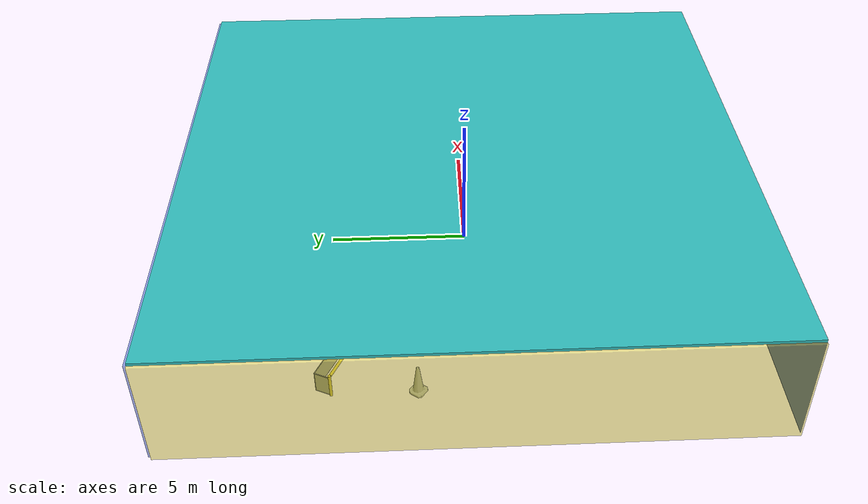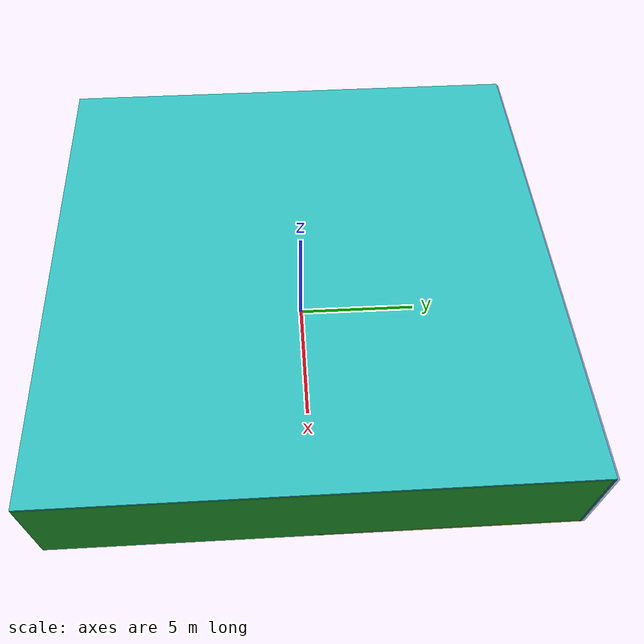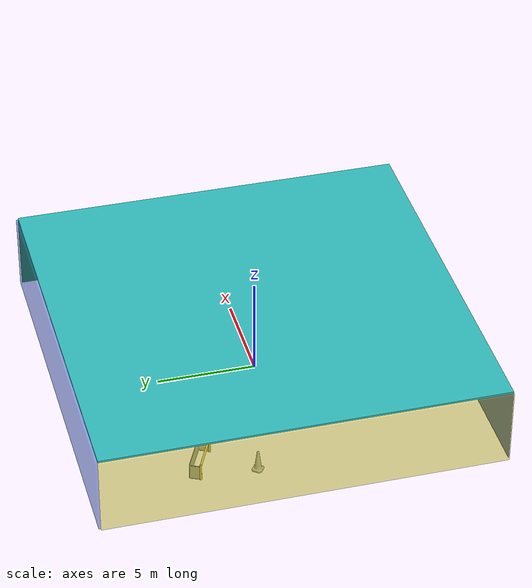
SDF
<sdf version="1.4">
 <world name="default">
  <physics type="ode">
   <max_step_size>0.001</max_step_size>
   <real_time_factor>1</real_time_factor>
   <real_time_update_rate>1000</real_time_update_rate>
   <gravity>0 0 -9.8</gravity>
  </physics>
  <scene><ambient>0.4 0.4 0.4 1</ambient><background>0.7 0.7 0.7 1</background><shadows>1</shadows></scene>
  <model name="Surrounding">
   <static>1</static>
   <link name="Ceiling">
    <collision name="Ceiling_Collision"><geometry><box><size>20 20 0.1</size></box></geometry></collision>
    <visual name="Ceiling_Visual">
     <geometry><box><size>20 20 0.1</size></box></geometry>
     <material>
      <script>
       <uri>file://media/materials/scripts/gazebo.material</uri>
       <name>Gazebo/TurquoiseGlowOutline</name>
      </script>
     </material>
    </visual>
    <pose>0 0 4.05 0 0 0</pose>
   </link>
   <link name="Wall_South">
    <collision name="Wall_South_Collision">
     <geometry><box><size>20 0 4</size></box></geometry>
     <pose>0 0 2 0 -0 0</pose>
    </collision>
    <visual name="Wall_South_Visual">
     <pose>0 0 2 0 -0 0</pose>
     <geometry><box><size>20 0 4</size></box></geometry>
     <material>
      <script><uri>file://media/materials/scripts/gazebo.material</uri><name>Gazebo/BlueGlow</name></script>
     </material>
    </visual>
    <velocity_decay><linear>0</linear><angular>0</angular></velocity_decay>
    <pose>0 -10 0 0 -0 0</pose>
   </link>
   <link name="Wall_East">
    <collision name="Wall_21_Collision">
     <geometry><box><size>20 0 4</size></box></geometry>
     <pose>0 0 2 0 -0 0</pose>
    </collision>
    <visual name="Wall_21_Visual">
     <pose>0 0 2 0 -0 0</pose>
     <geometry><box><size>20 0 4</size></box></geometry>
     <material>
      <script><uri>file://media/materials/scripts/gazebo.material</uri><name>Gazebo/GreenGlow</name></script>
     </material>
    </visual>
    <velocity_decay><linear>0</linear><angular>0</angular></velocity_decay>
    <pose>10 0 0 0 -0 1.5708</pose>
   </link>
   <link name="Wall_North">
    <collision name="Wall_22_Collision">
     <geometry><box><size>20 0.2 4</size></box></geometry>
     <pose>0 0 2 0 -0 0</pose>
    </collision>
    <visual name="Wall_22_Visual">
     <pose>0 0 2 0 -0 0</pose>
     <geometry><box><size>20 0.2 4</size></box></geometry>
     <material>
      <script><uri>file://media/materials/scripts/gazebo.material</uri><name>Gazebo/BlueTransparent</name></script>
     </material>
    </visual>
    <velocity_decay><linear>0</linear><angular>0</angular></velocity_decay>
    <pose>0 10 0 0 -0 0</pose>
   </link>
   <link name="Wall_West">
    <collision name="Wall_23_Collision">
     <geometry><box><size>20 0.2 4</size></box></geometry>
     <pose>0 0 2 0 -0 0</pose>
    </collision>
    <visual name="Wall_23_Visual">
     <pose>0 0 2 0 -0 0</pose>
     <geometry><box><size>20 0.2 4</size></box></geometry>
     <material>
      <script>
       <uri>file://media/materials/scripts/gazebo.material</uri>
       <name>Gazebo/YellowTransparent</name>
      </script>
     </material>
    </visual>
    <velocity_decay><linear>0</linear><angular>0</angular></velocity_decay>
    <pose>-10 0 0 0 0 -1.5708</pose>
   </link>
   <link name="Ground_link">
    <collision name="collision">
     <pose>0 0 .05 0 -0 0</pose>
     <geometry><box><size>20 20 0.1</size></box></geometry>
    </collision>
    <visual name="visual">
     <pose>0 0 .05 0 -0 0</pose>
     <geometry><box><size>20 20 0.1</size></box></geometry>
     <material>
      <script>
       <uri>file://media/materials/scripts/gazebo.material</uri>
       <name>Gazebo/YellowTransparent</name>
      </script>
     </material>
    </visual>
   </link>
   <static>1</static>
  </model>
  <spherical_coordinates>
   <surface_model>EARTH_WGS84</surface_model>
   <latitude_deg>0</latitude_deg>
   <longitude_deg>0</longitude_deg>
   <elevation>0</elevation>
   <heading_deg>0</heading_deg>
  </spherical_coordinates>
  <light name="lightball_0" type="diffuse">
   <diffuse>0.8 0.8 0.8 1</diffuse>
   <specular>0.2 0.2 0.2 1</specular>
   <attenuation>
    <range>100</range>
    <constant>0.7</constant>
    <linear>0.01</linear>
    <quadratic>0.001</quadratic>
   </attenuation>
   <direction>-0.5 0.1 -0.9</direction>
   <pose>-7.76096499551 0.110691502334 3.0010885159 0 0 0</pose>
  </light>
  <light name="lightball_1" type="diffuse">
   <diffuse>0.8 0.8 0.8 1</diffuse>
   <specular>0.2 0.2 0.2 1</specular>
   <attenuation>
    <range>100</range>
    <constant>0.7</constant>
    <linear>0.01</linear>
    <quadratic>0.001</quadratic>
   </attenuation>
   <direction>-0.5 0.1 -0.9</direction>
   <pose>-9.79039637267 -4.05579660776 3.69515992 0 0 0</pose>
  </light>
  <light name="lightball_2" type="diffuse">
   <diffuse>0.8 0.8 0.8 1</diffuse>
   <specular>0.2 0.2 0.2 1</specular>
   <attenuation>
    <range>100</range>
    <constant>0.7</constant>
    <linear>0.01</linear>
    <quadratic>0.001</quadratic>
   </attenuation>
   <direction>-0.5 0.1 -0.9</direction>
   <pose>-8.45709359726 6.27472351842 0.769468424199 0 0 0</pose>
  </light>
  <light name="lightball_3" type="diffuse">
   <diffuse>0.8 0.8 0.8 1</diffuse>
   <specular>0.2 0.2 0.2 1</specular>
   <attenuation>
    <range>100</range>
    <constant>0.7</constant>
    <linear>0.01</linear>
    <quadratic>0.001</quadratic>
   </attenuation>
   <direction>-0.5 0.1 -0.9</direction>
   <pose>-2.43553623397 3.00779526259 0.640627569685 0 0 0</pose>
  </light>
  <include>
   <uri>model://construction_cone</uri>
   <pose>-7.72245575233 1.85418471543 0 0 0 0.930275539134</pose>
  </include>
  <include>
   <uri>model://robocup_3Dsim_goal</uri>
   <pose>-6.81884763012 4.21983330526 0 0 0 1.12704064437</pose>
  </include>
  <include><uri>model://table</uri><pose>-0.917255229463 -4.55659833016 0 0 0 1.15651106027</pose></include>
 </world>
</sdf>

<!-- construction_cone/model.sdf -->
<sdf version="1.5">
  <model name="Construction Cone">
    <link name="link">
      <collision name="collision">
        <geometry>
          <mesh>
            <scale>10 10 10</scale>
            <uri>file://isr-testbed/construction_cone/meshes/construction_cone.dae</uri>
          </mesh>
        </geometry>
      </collision>
      <visual name="visual">
        <geometry>
          <mesh>
            <scale>10 10 10</scale>
            <uri>file://isr-testbed/construction_cone/meshes/construction_cone.dae</uri>
          </mesh>
        </geometry>
      </visual>
    </link>
  </model>
</sdf>

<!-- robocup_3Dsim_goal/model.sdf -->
<sdf version="1.5">
  <model name="robocup_3d_goal">
    <static>true</static>
    <link name="left_post">
      <pose>0 1.05 0.45 0 0 0</pose>
      <collision name="collision">
        <geometry>
          <cylinder>
            <radius>0.05</radius>
            <length>0.9</length>
          </cylinder>
        </geometry>
      </collision>
      <visual name="visual">
        <geometry>
          <cylinder>
            <radius>0.05</radius>
            <length>0.9</length>
          </cylinder>
        </geometry>
        <material>
          <script>
            <uri>file://media/materials/scripts/gazebo.material</uri>
            <name>Gazebo/ZincYellow</name>
          </script>
        </material>
      </visual>
    </link>
    <link name="left_support_horiz_lower">
      <pose>0.30 1.05 0.01 0 0 0</pose>
      <collision name="collision">
        <geometry>
          <box>
            <size>0.50 0.02 0.02</size>
          </box>
        </geometry>
      </collision>
      <visual name="visual">
        <geometry>
          <box>
            <size>0.50 0.02 0.02</size>
          </box>
        </geometry>
        <material>
          <script>
            <uri>file://media/materials/scripts/gazebo.material</uri>
            <name>Gazebo/White</name>
          </script>
        </material>
      </visual>
    </link>
    <link name="left_support_horiz_upper">
      <pose>0.30 1.05 0.79 0 0 0</pose>
      <collision name="collision">
        <geometry>
          <box>
            <size>0.50 0.02 0.02</size>
          </box>
        </geometry>
      </collision>
      <visual name="visual">
        <geometry>
          <box>
            <size>0.50 0.02 0.02</size>
          </box>
        </geometry>
        <material>
          <script>
            <uri>file://media/materials/scripts/gazebo.material</uri>
            <name>Gazebo/White</name>
          </script>
        </material>
      </visual>
    </link>
    <link name="left_support_vertical">
      <pose>0.56 1.05 0.4 0 1.5708 0</pose>
      <collision name="collision">
        <geometry>
          <box>
            <size>0.80 0.02 0.02</size>
          </box>
        </geometry>
      </collision>
      <visual name="visual">
        <geometry>
          <box>
            <size>0.80 0.02 0.02</size>
          </box>
        </geometry>
        <material>
          <script>
            <uri>file://media/materials/scripts/gazebo.material</uri>
            <name>Gazebo/White</name>
          </script>
        </material>
      </visual>
    </link>
    <link name="right_support_horiz_lower">
      <pose>0.30 -1.05 0.01 0 0 0</pose>
      <collision name="collision">
        <geometry>
          <box>
            <size>0.50 0.02 0.02</size>
          </box>
        </geometry>
      </collision>
      <visual name="visual">
        <geometry>
          <box>
            <size>0.50 0.02 0.02</size>
          </box>
        </geometry>
        <material>
          <script>
            <uri>file://media/materials/scripts/gazebo.material</uri>
            <name>Gazebo/White</name>
          </script>
        </material>
      </visual>
    </link>
    <link name="right_support_horiz_upper">
      <pose>0.30 -1.05 0.79 0 0 0</pose>
      <collision name="collision">
        <geometry>
          <box>
            <size>0.50 0.02 0.02</size>
          </box>
        </geometry>
      </collision>
      <visual name="visual">
        <geometry>
          <box>
            <size>0.50 0.02 0.02</size>
          </box>
        </geometry>
        <material>
          <script>
            <uri>file://media/materials/scripts/gazebo.material</uri>
            <name>Gazebo/White</name>
          </script>
        </material>
      </visual>
    </link>
    <link name="right_support_vertical">
      <pose>0.56 -1.05 0.4 0 1.5708 0</pose>
      <collision name="collision">
        <geometry>
          <box>
            <size>0.80 0.02 0.02</size>
          </box>
        </geometry>
      </collision>
      <visual name="visual">
        <geometry>
          <box>
            <size>0.80 0.02 0.02</size>
          </box>
        </geometry>
        <material>
          <script>
            <uri>file://media/materials/scripts/gazebo.material</uri>
            <name>Gazebo/White</name>
          </script>
        </material>
      </visual>
    </link>
    <link name="center_support_horiz_lower">
      <pose>0.56 0 0.01 0 1.5708 0</pose>
      <collision name="collision">
        <geometry>
          <box>
            <size>0.02 2.08 0.02</size>
          </box>
        </geometry>
      </collision>
      <visual name="visual">
        <geometry>
          <box>
            <size>0.02 2.08 0.02</size>
          </box>
        </geometry>
        <material>
          <script>
            <uri>file://media/materials/scripts/gazebo.material</uri>
            <name>Gazebo/White</name>
          </script>
        </material>
      </visual>
    </link>
    <link name="center_support_horiz_upper">
      <pose>0.56 0 0.79 0 1.5708 0</pose>
      <collision name="collision">
        <geometry>
          <box>
            <size>0.02 2.08 0.02</size>
          </box>
        </geometry>
      </collision>
      <visual name="visual">
        <geometry>
          <box>
            <size>0.02 2.08 0.02</size>
          </box>
        </geometry>
        <material>
          <script>
            <uri>file://media/materials/scripts/gazebo.material</uri>
            <name>Gazebo/White</name>
          </script>
        </material>
      </visual>
    </link>
    <link name="right_post">
      <pose>0 -1.05 0.45 0 0 0</pose>
      <collision name="collision">
        <geometry>
          <cylinder>
            <radius>0.05</radius>
            <length>0.9</length>
          </cylinder>
        </geometry>
      </collision>
      <visual name="visual">
        <geometry>
          <cylinder>
            <radius>0.05</radius>
            <length>0.9</length>
          </cylinder>
        </geometry>
        <material>
          <script>
            <uri>file://media/materials/scripts/gazebo.material</uri>
            <name>Gazebo/ZincYellow</name>
          </script>
        </material>
      </visual>
    </link>
    <link name="crossbar">
      <pose>0 0 0.85 1.57 1.57 0</pose>
      <collision name="collision">
        <geometry>
          <cylinder>
            <radius>0.05</radius>
            <length>2.0</length>
          </cylinder>
        </geometry>
      </collision>
      <visual name="visual">
        <geometry>
          <cylinder>
            <radius>0.05</radius>
            <length>2.0</length>
          </cylinder>
        </geometry>
        <material>
          <script>
            <uri>file://media/materials/scripts/gazebo.material</uri>
            <name>Gazebo/ZincYellow</name>
          </script>
        </material>
      </visual>
    </link>
    <link name="center_net">
      <pose>0.56 0 0.40 0 0 0</pose>
      <collision name="collision">
        <geometry>
          <box>
            <size>0.01 2.1 0.80</size>
          </box>
        </geometry>
      </collision>
      <visual name="visual">
        <geometry>
          <box>
            <size>0.01 2.1 0.80</size>
          </box>
        </geometry>
        <material>
          <script>
            <uri>model://../model_source/models/robocup09_spl_field/materials/scripts/</uri>
            <uri>model://../model_source/models/robocup09_spl_field/materials/textures/</uri>
            <name>RoboCup/Net</name>
          </script>
        </material>
      </visual>
    </link>
    <link name="left_net">
      <pose>0.30 1.05 0.40 0 0 0</pose>
      <collision name="collision">
        <geometry>
          <box>
            <size>0.50 0.01 0.76</size>
          </box>
        </geometry>
      </collision>
      <visual name="visual">
        <geometry>
          <box>
            <size>0.50 0.01 0.76</size>
          </box>
        </geometry>
        <material>
          <script>
            <uri>model://../model_source/models/robocup09_spl_field/materials/scripts/</uri>
            <uri>model://../model_source/models/robocup09_spl_field/materials/textures/</uri>
            <name>RoboCup/Net</name>
          </script>
        </material>
      </visual>
    </link>
    <link name="right_net">
      <pose>0.30 -1.05 0.40 0 0 0</pose>
      <collision name="collision">
        <geometry>
          <box>
            <size>0.50 0.01 0.76</size>
          </box>
        </geometry>
      </collision>
      <visual name="visual">
        <geometry>
          <box>
            <size>0.50 0.01 0.76</size>
          </box>
        </geometry>
        <material>
          <script>
            <uri>model://../model_source/models/robocup09_spl_field/materials/scripts/</uri>
            <uri>model://../model_source/models/robocup09_spl_field/materials/textures/</uri>
            <name>RoboCup/Net</name>
          </script>
        </material>
      </visual>
    </link>
  </model>
</sdf>

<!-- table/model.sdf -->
<sdf version="1.5">
  <model name="table">
    <static>true</static>
    <link name="link">
      <collision name="surface">
        <pose>0 0 1.0 0 0 0</pose>
        <geometry>
          <box>
            <size>1.5 0.8 0.03</size>
          </box>
        </geometry>
        <surface>
          <friction>
            <ode>
              <mu>0.6</mu>
              <mu2>0.6</mu2>
            </ode>
          </friction>
        </surface>
      </collision>
      <visual name="visual1">
        <pose>0 0 1.0 0 0 0</pose>
        <geometry>
          <box>
            <size>1.5 0.8 0.03</size>
          </box>
        </geometry>
        <material>
          <script>
            <uri>model://media/materials/scripts/gazebo.material</uri>
            <name>Gazebo/Wood</name>
          </script>
        </material>
      </visual>
      <collision name="front_left_leg">
        <pose>0.68 0.38 0.5 0 0 0</pose>
        <geometry>
          <cylinder>
            <radius>0.02</radius>
            <length>1.0</length>
          </cylinder>
        </geometry>
      </collision>
      <visual name="front_left_leg">
        <pose>0.68 0.38 0.5 0 0 0</pose>
        <geometry>
          <cylinder>
            <radius>0.02</radius>
            <length>1.0</length>
          </cylinder>
        </geometry>
        <material>
          <script>
            <uri>model://media/materials/scripts/gazebo.material</uri>
            <name>Gazebo/Grey</name>
          </script>
        </material>
      </visual>
      <collision name="front_right_leg">
        <pose>0.68 -0.38 0.5 0 0 0</pose>
        <geometry>
          <cylinder>
            <radius>0.02</radius>
            <length>1.0</length>
          </cylinder>
        </geometry>
      </collision>
      <visual name="front_right_leg">
        <pose>0.68 -0.38 0.5 0 0 0</pose>
        <geometry>
          <cylinder>
            <radius>0.02</radius>
            <length>1.0</length>
          </cylinder>
        </geometry>
        <material>
          <script>
            <uri>model://media/materials/scripts/gazebo.material</uri>
            <name>Gazebo/Grey</name>
          </script>
        </material>
      </visual>
      <collision name="back_right_leg">
        <pose>-0.68 -0.38 0.5 0 0 0</pose>
        <geometry>
          <cylinder>
            <radius>0.02</radius>
            <length>1.0</length>
          </cylinder>
        </geometry>
      </collision>
      <visual name="back_right_leg">
        <pose>-0.68 -0.38 0.5 0 0 0</pose>
        <geometry>
          <cylinder>
            <radius>0.02</radius>
            <length>1.0</length>
          </cylinder>
        </geometry>
        <material>
          <script>
            <uri>model://media/materials/scripts/gazebo.material</uri>
            <name>Gazebo/Grey</name>
          </script>
        </material>
      </visual>
      <collision name="back_left_leg">
        <pose>-0.68 0.38 0.5 0 0 0</pose>
        <geometry>
          <cylinder>
            <radius>0.02</radius>
            <length>1.0</length>
          </cylinder>
        </geometry>
      </collision>
      <visual name="back_left_leg">
        <pose>-0.68 0.38 0.5 0 0 0</pose>
        <geometry>
          <cylinder>
            <radius>0.02</radius>
            <length>1.0</length>
          </cylinder>
        </geometry>
        <material>
          <script>
            <uri>model://media/materials/scripts/gazebo.material</uri>
            <name>Gazebo/Grey</name>
          </script>
        </material>
      </visual>
    </link>
  </model>
</sdf>
